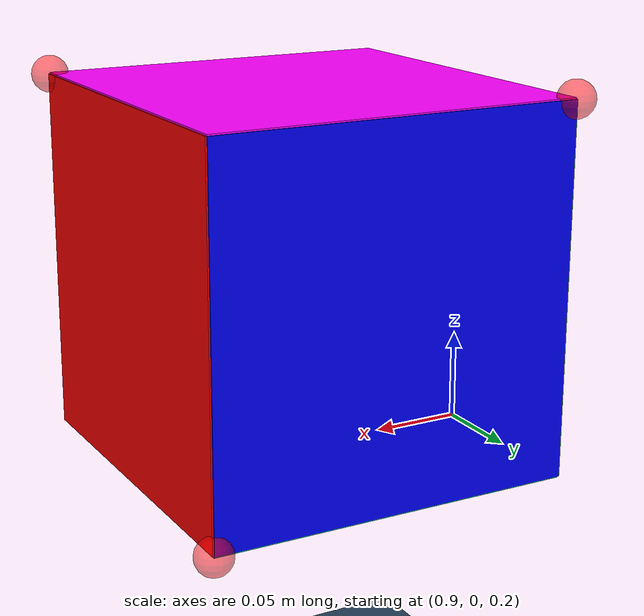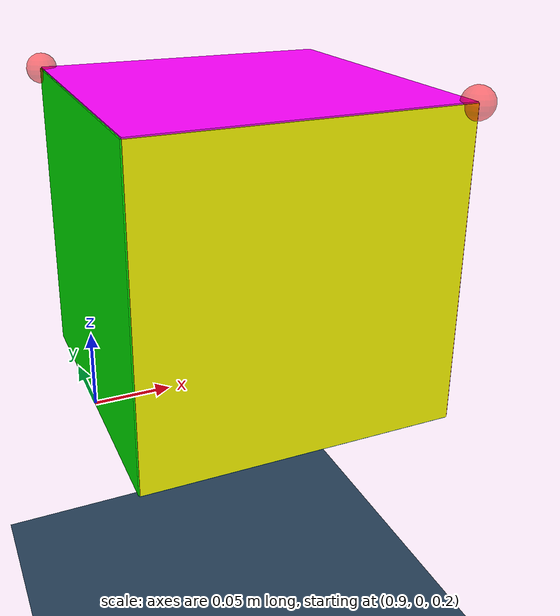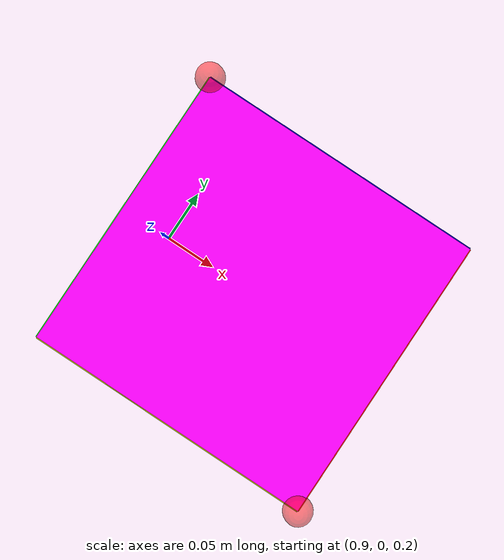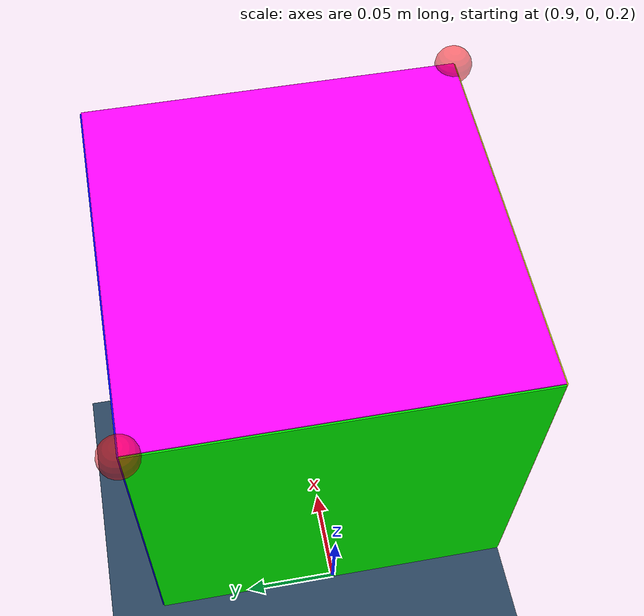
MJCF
<mujoco model="scene">

  <statistic center="1 -0.8 1.1" extent=".35"/>

  <visual>
    <headlight diffuse="0.8 0.8 0.8" ambient="0.3 0.3 0.3" specular="0 0 0"/>
    <rgba haze="0.15 0.25 0.35 1"/>
    <global azimuth="-130" elevation="-20"/>
  </visual>

  <asset>
    <texture type="skybox" builtin="gradient" rgb1="0.3 0.5 0.7" rgb2="0 0 0" width="512" height="3072"/>
    <texture type="2d" name="groundplane" builtin="checker" mark="edge" rgb1="0.2 0.3 0.4" rgb2="0.1 0.2 0.3"
      markrgb="0.8 0.8 0.8" width="300" height="300"/>
    <material name="groundplane" texture="groundplane" texuniform="true" texrepeat="5 5" reflectance="0.2"/>
  </asset>

  <worldbody>
    <camera name="fixed_cam" pos="3.425 -1.981 3.574" xyaxes="0.679 0.734 -0.000 -0.467 0.432 0.771"/>
    <light pos="0 0 1.5" dir="0 0 -1" directional="true"/>

    <geom name="floor" size="0 0 0.05" type="plane" material="groundplane"/>

    <body name="obj" pos="1.0 0.0 0.3">
      <freejoint />

      <!-- Collision + mass go here -->
      <geom name="obj_col"
            type="box"
            size="0.1 0.1 0.1"
            rgba="0 0 0 0"
            mass="0.2"/>

      <!-- Visual faces only (no mass, no collisions) -->

      <!-- +X face -->
      <geom type="box" pos="0.0998 0 0"
            size="0.001 0.1 0.1"
            rgba="1 0 0 1"
            contype="0" conaffinity="0" density="0"/>

      <!-- -X face -->
      <geom type="box" pos="-0.0998 0 0"
            size="0.001 0.1 0.1"
            rgba="0 1 0 1"
            contype="0" conaffinity="0" density="0"/>

      <!-- +Y face -->
      <geom type="box" pos="0 0.0998 0"
            size="0.1 0.001 0.1"
            rgba="0 0 1 1"
            contype="0" conaffinity="0" density="0"/>

      <!-- -Y face -->
      <geom type="box" pos="0 -0.0998 0"
            size="0.1 0.001 0.1"
            rgba="1 1 0 1"
            contype="0" conaffinity="0" density="0"/>

      <!-- +Z face -->
      <geom type="box" pos="0 0 0.0998"
            size="0.1 0.1 0.001"
            rgba="1 0 1 1"
            contype="0" conaffinity="0" density="0"/>

      <!-- -Z face -->
      <geom type="box" pos="0 0 -0.0998"
            size="0.1 0.1 0.001"
            rgba="0 1 1 1"
            contype="0" conaffinity="0" density="0"/>

      <!-- Box markers -->
      <geom name="box_marker_0" type="sphere" pos="-0.0998 0.1 0.1"
            size="0.01"
            rgba="1 0 0 0.5"
            contype="0" conaffinity="0" density="0"/>

      <geom name="box_marker_1" type="sphere" pos="0.1 -0.0998 0.1"
            size="0.01"
            rgba="1 0 0 0.5"
            contype="0" conaffinity="0" density="0"/>

      <geom name="box_marker_2" type="sphere" pos="0.1 0.1 -0.0998"
            size="0.01"
            rgba="1 0 0 0.5"
            contype="0" conaffinity="0" density="0"/>
    </body>
  </worldbody>
</mujoco>
